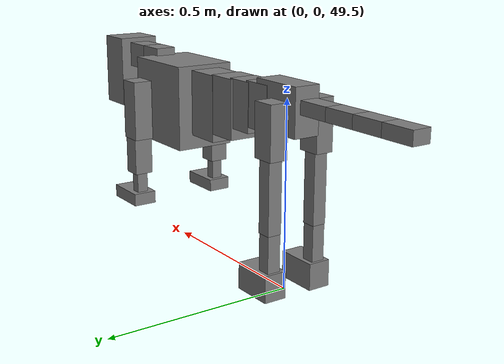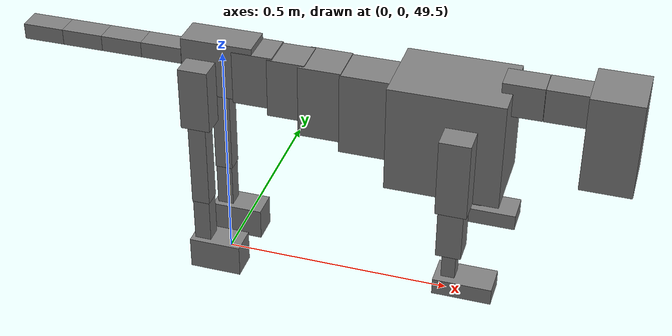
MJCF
<mujoco model="dog">

    <default>
        <joint armature="0.02" stiffness="1" damping="0.2" limited="true"/>
        <geom condim="3" friction="1 0.05 0.05" margin="0.01"/>
        <motor ctrllimited="true" ctrlrange="-1.0 1.0" forcelimited="true" gear="50"/>
    </default>

    <compiler inertiafromgeom="true" angle="radian"/>

    <option timestep="0.016" iterations="50" tolerance="1e-10" solver="Newton" jacobian="dense" cone="pyramidal"/>

    <size nconmax="20000" njmax="60000" nstack="5000000"/>
    <visual>
        <map force="0.1" zfar="30"/>
        <rgba haze="0.15 0.25 0.35 1"/>
        <quality shadowsize="2048"/>
        <global offwidth="800" offheight="800"/>
    </visual>

    <asset>
        <texture type="skybox" builtin="gradient" rgb1="0.3 0.5 0.7" rgb2="0 0 0" width="512" height="512"/>
        <texture name="texplane" type="2d" builtin="checker" rgb1=".2 .3 .4" rgb2=".1 0.15 0.2" width="512" height="512"
                 mark="cross" markrgb=".8 .8 .8"/>
        <texture name="texgeom" type="cube" builtin="flat" mark="cross" width="127" height="1278" rgb1="0.8 0.6 0.4"
                 rgb2="0.8 0.6 0.4" markrgb="1 1 1" random="0.01"/>

        <material name="matplane" reflectance="0.3" texture="texplane" texrepeat="1 1" texuniform="true"/>
        <material name="matgeom" texture="texgeom" texuniform="true" rgba="0.8 0.6 .4 1"/>
    </asset>

    <worldbody>
        <geom name="floor" pos="0 0 0" size="0 0 .25" type="plane" material="matplane" condim="3"/>

        <light directional="false" diffuse=".2 .2 .2" specular="0 0 0" pos="0 0 5" dir="0 0 -1" castshadow="false"/>
        <light mode="targetbodycom" target="torso" directional="false" diffuse=".8 .8 .8" specular="0.3 0.3 0.3"
               pos="0 0 4.0" dir="0 0 -1"/>

        <body name="root" pos="0 0 50">
            <freejoint name="root_1"/>
            <geom type="box" pos="0 0 -0.02" size="0.0774  0.0358  0.063" density="2030"/>

            <body name="spine1" pos="0.054 0 0">
                <joint name="spine1_y" axis="0 1 0" range="0 0.7" limited="true"/>
                <geom type="box" pos="0.02375 0 -0.03" size="0.04375  0.0375  0.05985" density="2030"/>

                <body name="spine2" pos="0.0612 0 0">
                    <joint name="spine2_y" axis="0 1 0" range="-0.15 0.15" limited="true"/>
                    <geom type="box" pos="0.03555  0  -0.04" size="0.04055  0.039  0.06615" density="2030"/>

                    <body name="spine3" pos="0.0730 0 0">
                        <joint name="spine3_y" axis="0 1 0" range="-0.15 0.15" limited="true"/>
                        <geom type="box" pos="0.03555  0  -0.057" size="0.04555  0.0445  0.081" density="2030"/>

                        <body name="spine4" pos="0.0780 0 0">
                            <joint name="spine4_y" axis="0 1 0" range="-0.15 0.15" limited="true"/>
                            <geom type="box" pos="0.05265  0  -0.07" size="0.05265  0.045  0.09135" density="2030"/>

                            <body name="torso" pos="0.1082 0 0">
                                <joint name="torso_y" axis="0 1 0" range="-0.15 0.15" limited="true"/>
                                <geom type="box" pos="0.11925  0  -0.085" size="0.11925  0.085  0.11745"
                                      density="2030"/>

                                <body name="neck1" pos="0.2160  0   0.0180">
                                    <joint name="neck1_y" axis="0 1 0" range="-1.2  -1" limited="true"/>
                                    <geom type="box" pos="0.0423  0  0" size="0.0423  0.03  0.036" density="2325"/>

                                    <body name="neck2" pos="0.0853  0  0">
                                        <joint name="neck2_y" axis="0 1 0" range="0.1  0" limited="true"/>
                                        <geom type="box" pos="0.0423  0  0" size="0.0423  0.03  0.036" density="2325"/>

                                        <body name="head" pos="0.0853  0  0">
                                            <joint name="head_y" axis="0 1 0" range="-0.3  -0.2" limited="true"/>
                                            <geom type="box" pos="0.0531  0  -0.055" size="0.0531  0.06  0.1044"
                                                  density="4030"/>

                                        </body>
                                    </body>
                                </body>

                                <body name="front_shoulder" pos="0.156  0   -0.0480">
                                    <joint name="front_shoulder_y" axis="0 1 0" range="-1 1.5" limited="true"/>
                                    <geom type="box" pos="0 0.13 -0.0573" size="0.0321  0.0274  0.0840" density="1158"/>
                                    <geom type="box" pos="0 -0.13 -0.0573" size="0.0321  0.0274  0.0840"
                                          density="1158"/>

                                    <body name="front_elbow" pos="0  0  -0.1146">
                                        <joint name="front_elbow_y" axis="0 1 0" range="-2 0" limited="true"/>
                                        <geom type="box" pos="0 0.13 -0.0649" size="0.0260  0.0266  0.0649"
                                              density="1081"/>
                                        <geom type="box" pos="0 -0.13 -0.0649" size="0.0260  0.0266  0.0649"
                                              density="1081"/>

                                        <body name="front_wrist" pos="0  0  -0.1298">
                                            <joint name="front_wrist_y" axis="0 1 0" range="-0.2 0" limited="true"/>
                                            <geom type="box" pos="0 0.13 -0.0366" size="0.0143  0.0159  0.0498"
                                                  density="1664"/>
                                            <geom type="box" pos="0 -0.13 -0.0366" size="0.0143  0.0159  0.0498"
                                                  density="1664"/>

                                            <body name="front_finger_end" pos="0  0  -0.0732">
                                                <joint name="front_finger_y" axis="0 1 0" range="-0.4 1"
                                                       limited="true"/>
                                                <geom type="box" pos="0.0333  0.13  -0.0027"
                                                      size="0.0611  0.0333  0.0177" density="1515"/>
                                                <geom type="box" pos="0.0333  -0.13  -0.0027"
                                                      size="0.0611  0.0333  0.0177" density="1515"/>

                                            </body>

                                        </body>
                                    </body>
                                </body>

                            </body>
                        </body>
                    </body>
                </body>
            </body>

            <body name="back_hip" pos="-0.03 0 -0.018">
                <joint name="back_hip_y" axis="0 1 0" range="-1.5 0.3" limited="true"/>
                <geom type="box" pos="0 0.07 -0.0473" size="0.0318  0.0250  0.0701" density="1154"/>
                <geom type="box" pos="0 -0.07 -0.0473" size="0.0318  0.0250  0.0701" density="1154"/>

                <body name="back_knee" pos="0  0  -0.0947">
                    <joint name="back_knee_y" axis="0 1 0" range="0 2.8" limited="true"/>
                    <geom type="box" pos="0 0.07 -0.0988" size="0.0194  0.0191  0.1144" density="1227"/>
                    <geom type="box" pos="0 -0.07 -0.0988" size="0.0194  0.0191  0.1144" density="1227"/>

                    <body name="back_ankle" pos="0  0  -0.1976">
                        <joint name="back_ankle_y" axis="0 1 0" range="-2.2 0" limited="true"/>
                        <geom type="box" pos="0 0.07 -0.0641" size="0.0181  0.0181  0.0754" density="1284"/>
                        <geom type="box" pos="0 -0.07 -0.0641" size="0.0181  0.0181  0.0754" density="1284"/>

                        <body name="back_toe_end" pos="0  0  -0.1283">
                            <joint name="back_toe_y" axis="0 1 0" range="-0.4 1" limited="true"/>
                            <geom type="box" pos="0.0311  0.07  -0.0209" size="0.0571  0.0311  0.0359" density="1515"/>
                            <geom type="box" pos="0.0311  -0.07  -0.0209" size="0.0571  0.0311  0.0359" density="1515"/>

                        </body>
                    </body>
                </body>
            </body>

            <body name="tail1" pos="-0.074 0 -0.006">
                <joint name="tail1_y" axis="0 1 0" range="-0.2 0.2" limited="true"/>
                <geom type="box" pos="-0.0536  0  0" size="0.045  0.025  0.0175" density="1587"/>

                <body name="tail2" pos="-0.09 0 0">
                    <joint name="tail2_y" axis="0 1 0" range="-0.2 0.2" limited="true"/>
                    <geom type="box" pos="-0.0536  0  0" size="0.045  0.025  0.0175" density="1587"/>

                    <body name="tail3" pos="-0.09 0 0">
                        <joint name="tail3_y" axis="0 1 0" range="-0.2 0.2" limited="true"/>
                        <geom type="box" pos="-0.0536  0  0" size="0.045  0.025  0.0175" density="1587"/>

                        <body name="tail4" pos="-0.09 0 0">
                            <joint name="tail4_y" axis="0 1 0" range="-0.2 0.2" limited="true"/>
                            <geom type="box" pos="-0.0536  0  0" size="0.045  0.025  0.0175" density="1587"/>

                        </body>
                    </body>
                </body>
            </body>
        </body>
    </worldbody>

    <actuator>
        <motor joint="spine1_y" forcerange="-150 150     "/>
        <motor joint="spine2_y" forcerange="-150 150     "/>
        <motor joint="spine3_y" forcerange="-150 150     "/>
        <motor joint="spine4_y" forcerange="-150 150     "/>
        <motor joint="torso_y" forcerange="-150 150     "/>
        <motor joint="neck1_y" forcerange="-100 100       "/>
        <motor joint="neck2_y" forcerange="-100 100       "/>
        <motor joint="head_y" forcerange="-150 150       "/>
        <motor joint="front_shoulder_y" forcerange="-137.06 145.82"/>
        <motor joint="front_elbow_y" forcerange="-142.44 151.00"/>
        <motor joint="front_wrist_y" forcerange="-73.66 53.78"/>
        <motor joint="front_finger_y" forcerange="-57.12 80.70"/>
        <motor joint="back_hip_y" forcerange="-262.68 270.20"/>
        <motor joint="back_knee_y" forcerange="-275.89 201.73"/>
        <motor joint="back_angle_y" forcerange="-98.14 91.64"/>
        <motor joint="back_toe_y" forcerange="-49.32 119.80"/>
        <motor joint="tail1_y" forcerange="-50 50     "/>
        <motor joint="tail2_y" forcerange="-50 50     "/>
        <motor joint="tail3_y" forcerange="-50 50     "/>
        <motor joint="tail4_y" forcerange="-50 50     "/>
    </actuator>
</mujoco>
